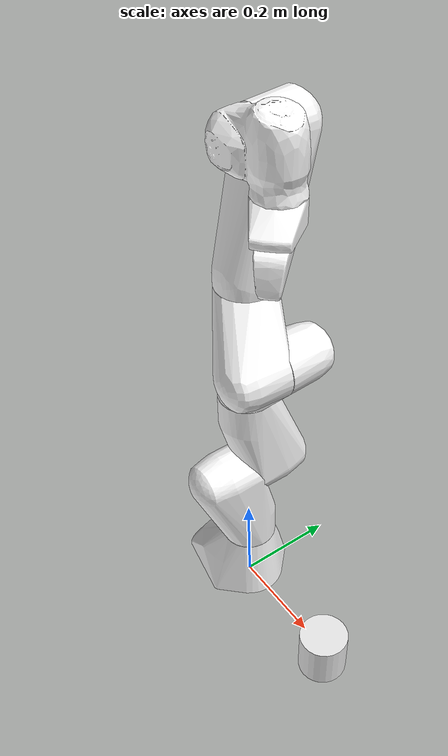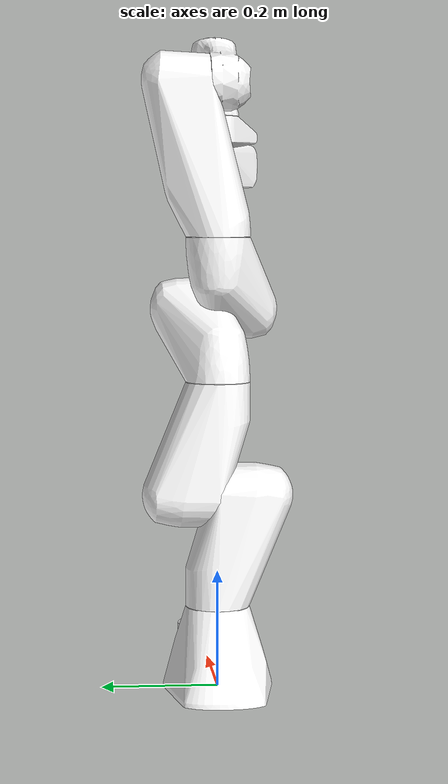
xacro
<?xml version="1.0" ?>
<robot name="pandas_robot" xmlns:xacro="http://www.ros.org/wiki/xacro">

  <xacro:property name="mesh_path" value="file:///home/starslab_go/stars_lab_ws/panda_robot/src/panda_description/Panda/meshes"/>
  <xacro:include filename="$(find panda_description)/Panda/materials.xacro"/>
  <xacro:include filename="$(find panda_description)/Panda/panda.gazebo"/>
  <xacro:include filename="$(find panda_description)/Panda/macros.xacro"/>

  <link name="panda_link0">
    <visual>
      <geometry>
        <mesh filename="${mesh_path}/collision/link0.obj"/>
      </geometry>
      <material name="panda_white"/>
    </visual>
    <collision>
      <geometry>
        <mesh filename="${mesh_path}/collision/link0.obj"/>
      </geometry>
      <material name="panda_white"/>
    </collision>
  </link>
  <link name="panda_link1">
    <visual>
      <geometry>
        <mesh filename="${mesh_path}/collision/link1.obj"/>
      </geometry>
      <material name="panda_white"/>
    </visual>
    <collision>
      <geometry>
        <mesh filename="${mesh_path}/collision/link1.obj"/>
      </geometry>
      <material name="panda_white"/>
    </collision>
  </link>
  <joint name="panda_joint1" type="revolute">
    <safety_controller k_position="100.0" k_velocity="40.0" soft_lower_limit="-2.8973" soft_upper_limit="2.8973"/>
    <origin rpy="0 0 0" xyz="0 0 0.333"/>
    <parent link="panda_link0"/>
    <child link="panda_link1"/>
    <axis xyz="0 0 1"/>
    <limit effort="87" lower="-2.9671" upper="2.9671" velocity="2.1750"/>
  </joint>
  <link name="panda_link2">
    <visual>
      <geometry>
        <mesh filename="${mesh_path}/collision/link2.obj"/>
      </geometry>
      <material name="panda_white"/>
    </visual>
    <collision>
      <geometry>
        <mesh filename="${mesh_path}/collision/link2.obj"/>
      </geometry>
      <material name="panda_white"/>
    </collision>
  </link>
  <joint name="panda_joint2" type="revolute">
    <safety_controller k_position="100.0" k_velocity="40.0" soft_lower_limit="-1.7628" soft_upper_limit="1.7628"/>
    <origin rpy="-1.57079632679 0 0" xyz="0 0 0"/>
    <parent link="panda_link1"/>
    <child link="panda_link2"/>
    <axis xyz="0 0 1"/>
    <limit effort="87" lower="-1.8326" upper="1.8326" velocity="2.1750"/>
  </joint>
  <link name="panda_link3">
    <visual>
      <geometry>
        <mesh filename="${mesh_path}/collision/link3.obj"/>
      </geometry>
      <material name="panda_white"/>
    </visual>
    <collision>
      <geometry>
        <mesh filename="${mesh_path}/collision/link3.obj"/>
      </geometry>
      <material name="panda_white"/>
    </collision>
  </link>
  <joint name="panda_joint3" type="revolute">
    <safety_controller k_position="100.0" k_velocity="40.0" soft_lower_limit="-2.8973" soft_upper_limit="2.8973"/>
    <origin rpy="1.57079632679 0 0" xyz="0 -0.316 0"/>
    <parent link="panda_link2"/>
    <child link="panda_link3"/>
    <axis xyz="0 0 1"/>
    <limit effort="87" lower="-2.9671" upper="2.9671" velocity="2.1750"/>
  </joint>
  <link name="panda_link4">
    <visual>
      <geometry>
        <mesh filename="${mesh_path}/collision/link4.obj"/>
      </geometry>
      <material name="panda_white"/>
    </visual>
    <collision>
      <geometry>
        <mesh filename="${mesh_path}/collision/link4.obj"/>
      </geometry>
      <material name="panda_white"/>
    </collision>
  </link>
  <joint name="panda_joint4" type="revolute">
    <safety_controller k_position="100.0" k_velocity="40.0" soft_lower_limit="-3.0718" soft_upper_limit="-0.0698"/>
    <origin rpy="1.57079632679 0 0" xyz="0.0825 0 0"/>
    <parent link="panda_link3"/>
    <child link="panda_link4"/>
    <axis xyz="0 0 1"/>
    <limit effort="87" lower="-3.1416" upper="0.0" velocity="2.1750"/>
  </joint>
  <link name="panda_link5">
    <visual>
      <geometry>
        <mesh filename="${mesh_path}/collision/link5.obj"/>
      </geometry>
      <material name="panda_white"/>
    </visual>
    <collision>
      <geometry>
        <mesh filename="${mesh_path}/collision/link5.obj"/>
      </geometry>
      <material name="panda_white"/>
    </collision>
  </link>
  <joint name="panda_joint5" type="revolute">
    <safety_controller k_position="100.0" k_velocity="40.0" soft_lower_limit="-2.8973" soft_upper_limit="2.8973"/>
    <origin rpy="-1.57079632679 0 0" xyz="-0.0825 0.384 0"/>
    <parent link="panda_link4"/>
    <child link="panda_link5"/>
    <axis xyz="0 0 1"/>
    <limit effort="12" lower="-2.9671" upper="2.9671" velocity="2.6100"/>
  </joint>
  <link name="panda_link6">
    <visual>
      <geometry>
        <mesh filename="${mesh_path}/collision/link6.obj"/>
      </geometry>
      <material name="panda_white"/>
    </visual>
    <collision>
      <geometry>
        <mesh filename="${mesh_path}/collision/link6.obj"/>
      </geometry>
      <material name="panda_white"/>
    </collision>
  </link>
  <joint name="panda_joint6" type="revolute">
    <safety_controller k_position="100.0" k_velocity="40.0" soft_lower_limit="-0.0175" soft_upper_limit="3.7525"/>
    <origin rpy="1.57079632679 0 0" xyz="0 0 0"/>
    <parent link="panda_link5"/>
    <child link="panda_link6"/>
    <axis xyz="0 0 1"/>
    <limit effort="12" lower="-0.0873" upper="3.8223" velocity="2.6100"/>
  </joint>
  <link name="panda_link7">
    <visual>
      <geometry>
        <mesh filename="${mesh_path}/collision/link7.obj"/>
      </geometry>
      <material name="panda_white"/>
    </visual>
    <collision>
      <geometry>
        <mesh filename="${mesh_path}/collision/link7.obj"/>
      </geometry>
      <material name="panda_white"/>
    </collision>
  </link>
  <joint name="panda_joint7" type="revolute">
    <safety_controller k_position="100.0" k_velocity="40.0" soft_lower_limit="-2.8973" soft_upper_limit="2.8973"/>
    <origin rpy="1.57079632679 0 0" xyz="0.088 0 0"/>
    <parent link="panda_link6"/>
    <child link="panda_link7"/>
    <axis xyz="0 0 1"/>
    <limit effort="12" lower="-2.9671" upper="2.9671" velocity="2.6100"/>
  </joint>
  <link name="panda_link8"/>
  <joint name="panda_joint8" type="fixed">
    <origin rpy="0 0 0" xyz="0 0 0.107"/>
    <parent link="panda_link7"/>
    <child link="panda_link8"/>
    <axis xyz="0 0 0"/>
  </joint>
  <joint name="panda_hand_joint" type="fixed">
    <parent link="panda_link8"/>
    <child link="panda_hand"/>
    <origin rpy="0 0 -0.785398163397" xyz="0 0 0"/>
  </joint>
  <link name="panda_hand">
    <visual>
      <geometry>
        <mesh filename="${mesh_path}/collision/hand.obj"/>
      </geometry>
      <material name="panda_white"/>
    </visual>
    <collision>
      <geometry>
        <mesh filename="${mesh_path}/collision/hand.obj"/>
      </geometry>
      <material name="panda_white"/>
    </collision>
  </link>
  <link name="panda_leftfinger">
    <visual>
      <geometry>
        <mesh filename="${mesh_path}/collision/finger.obj"/>
      </geometry>
      <material name="panda_white"/>
    </visual>
    <collision>
      <geometry>
        <mesh filename="${mesh_path}/collision/finger.obj"/>
      </geometry>
      <material name="panda_white"/>
    </collision>
  </link>
  <link name="panda_rightfinger">
    <visual>
      <origin rpy="0 0 3.14159265359" xyz="0 0 0"/>
      <geometry>
        <mesh filename="${mesh_path}/collision/finger.obj"/>
      </geometry>
      <material name="panda_white"/>
    </visual>
    <collision>
      <origin rpy="0 0 3.14159265359" xyz="0 0 0"/>
      <geometry>
        <mesh filename="${mesh_path}/collision/finger.obj"/>
      </geometry>
      <material name="panda_white"/>
    </collision>
  </link>
  <joint name="panda_finger_joint1" type="prismatic">
    <parent link="panda_hand"/>
    <child link="panda_leftfinger"/>
    <origin rpy="0 0 0" xyz="0 0 0.0584"/>
    <axis xyz="0 1 0"/>
    <limit effort="20" lower="0.0" upper="0.04" velocity="0.2"/>
  </joint>
  <joint name="panda_finger_joint2" type="prismatic">
    <parent link="panda_hand"/>
    <child link="panda_rightfinger"/>
    <origin rpy="0 0 0" xyz="0 0 0.0584"/>
    <axis xyz="0 -1 0"/>
    <limit effort="20" lower="0.0" upper="0.04" velocity="0.2"/>
    <mimic joint="panda_finger_joint1"/>
  </joint>
  <material name="panda_white">
    <color rgba="1. 1. 1. 1."/>
  </material>
  <link name="sensor_laser">
    <inertial>
      <origin xyz="0 0 0" rpy="0 0 0" />
      <mass value="1" />
      <xacro:cylinder_inertia mass="1" r="0.05" l="0.1" />
    </inertial>

    <visual>
      <origin xyz="0 0 0" rpy="0 0 0" />
      <geometry>
        <cylinder radius="0.05" length="0.1"/>
      </geometry>
      <material name="white" />
    </visual>

    <collision>
      <origin xyz="0 0 0" rpy="0 0 0"/>
      <geometry>
        <cylinder radius="0.05" length="0.1"/>
      </geometry>
    </collision>
  </link>

  <joint name="joint_sensor_laser" type="fixed">
    <origin xyz="0.26 0 0.0" rpy="0 0 0"/>
    <parent link="panda_link0"/>
    <child link="sensor_laser"/>
  </joint>
</robot>

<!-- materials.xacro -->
<robot xmlns:xacro="http://www.ros.org/wiki/xacro">
    <material name="red">
        <color rgba="0.80078125 0.12890625 0.1328125 1.0"/>
    </material>
</robot>

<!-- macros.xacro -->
<robot xmlns:xacro="http://www.ros.org/wiki/xacro">

    <xacro:macro name="cylinder_inertia" params="mass r l">
      <inertia  ixx="${mass*(3*r*r+l*l)/12}" ixy = "0" ixz = "0"
                iyy="${mass*(3*r*r+l*l)/12}" iyz = "0"
                izz="${mass*(r*r)/2}" />
    </xacro:macro>
</robot>
